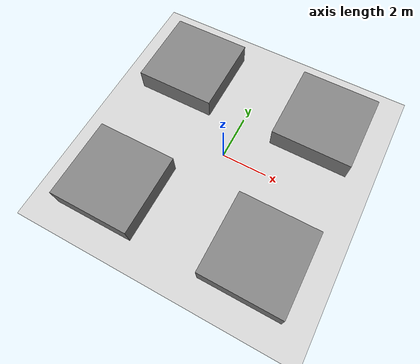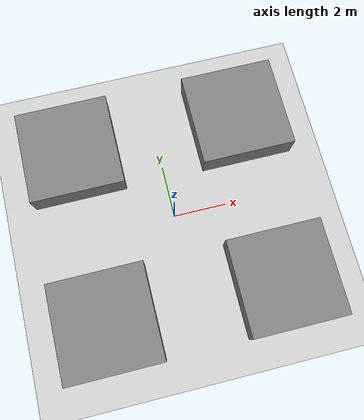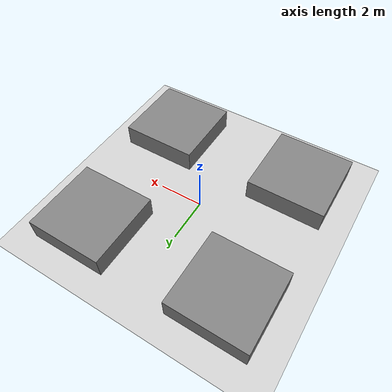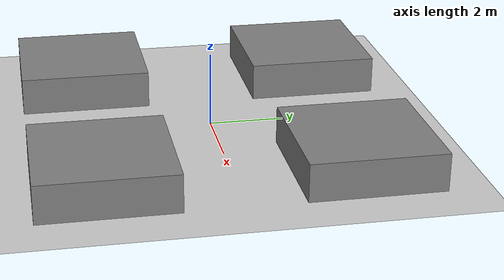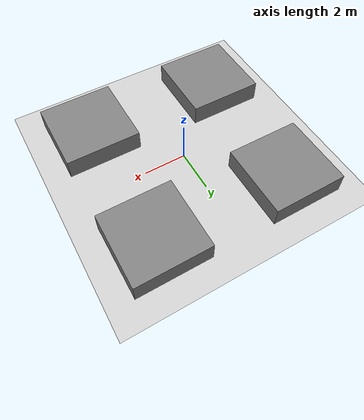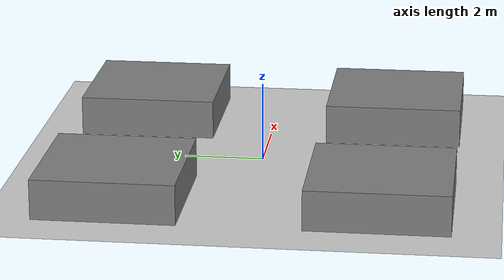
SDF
<?xml version="1.0" ?>
<sdf version="1.6">
  <world name="proper_roads">
    <include>
      <uri>model://sun</uri>
    </include>
    <include>
      <uri>model://ground_plane</uri>
    </include>

    <!-- Top Left Block -->
    <model name="block_tl">
      <pose>-3.25 -3.25 0.5 0 0 0</pose>
      <static>true</static>
      <link name="link">
        <collision name="collision">
          <geometry>
            <box>
              <size>3.5 3.5 1.0</size>
            </box>
          </geometry>
        </collision>
        <visual name="visual">
          <geometry>
            <box>
              <size>3.5 3.5 1.0</size>
            </box>
          </geometry>
          <material>
            <ambient>0.5 0.5 0.5 1</ambient>
          </material>
        </visual>
      </link>
    </model>

    <!-- Top Right Block -->
    <model name="block_tr">
      <pose>3.25 -3.25 0.5 0 0 0</pose>
      <static>true</static>
      <link name="link">
        <collision name="collision">
          <geometry>
            <box>
              <size>3.5 3.5 1.0</size>
            </box>
          </geometry>
        </collision>
        <visual name="visual">
          <geometry>
            <box>
              <size>3.5 3.5 1.0</size>
            </box>
          </geometry>
          <material>
            <ambient>0.5 0.5 0.5 1</ambient>
          </material>
        </visual>
      </link>
    </model>

    <!-- Bottom Left Block -->
    <model name="block_bl">
      <pose>-3.25 3.25 0.5 0 0 0</pose>
      <static>true</static>
      <link name="link">
        <collision name="collision">
          <geometry>
            <box>
              <size>3.5 3.5 1.0</size>
            </box>
          </geometry>
        </collision>
        <visual name="visual">
          <geometry>
            <box>
              <size>3.5 3.5 1.0</size>
            </box>
          </geometry>
          <material>
            <ambient>0.5 0.5 0.5 1</ambient>
          </material>
        </visual>
      </link>
    </model>

    <!-- Bottom Right Block -->
    <model name="block_br">
      <pose>3.25 3.25 0.5 0 0 0</pose>
      <static>true</static>
      <link name="link">
        <collision name="collision">
          <geometry>
            <box>
              <size>3.5 3.5 1.0</size>
            </box>
          </geometry>
        </collision>
        <visual name="visual">
          <geometry>
            <box>
              <size>3.5 3.5 1.0</size>
            </box>
          </geometry>
          <material>
            <ambient>0.5 0.5 0.5 1</ambient>
          </material>
        </visual>
      </link>
    </model>

    <physics type="ode">
      <real_time_update_rate>1000.0</real_time_update_rate>
      <max_step_size>0.001</max_step_size>
      <real_time_factor>1.0</real_time_factor>
    </physics>
  </world>
</sdf>
